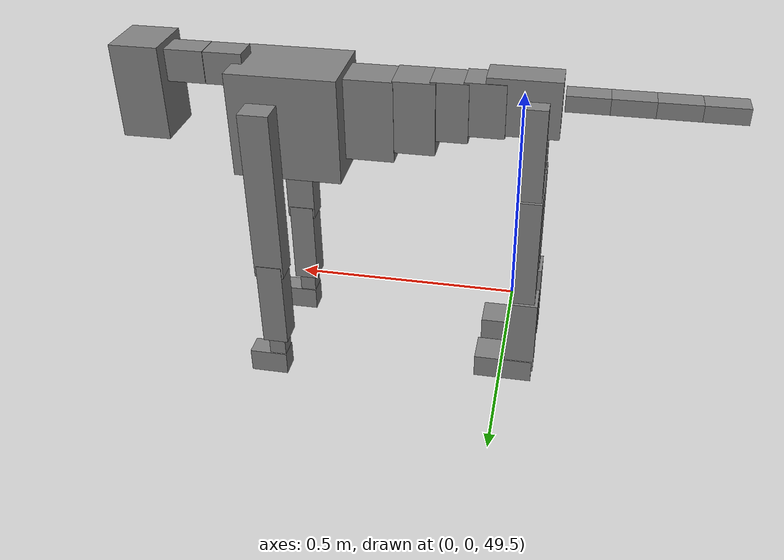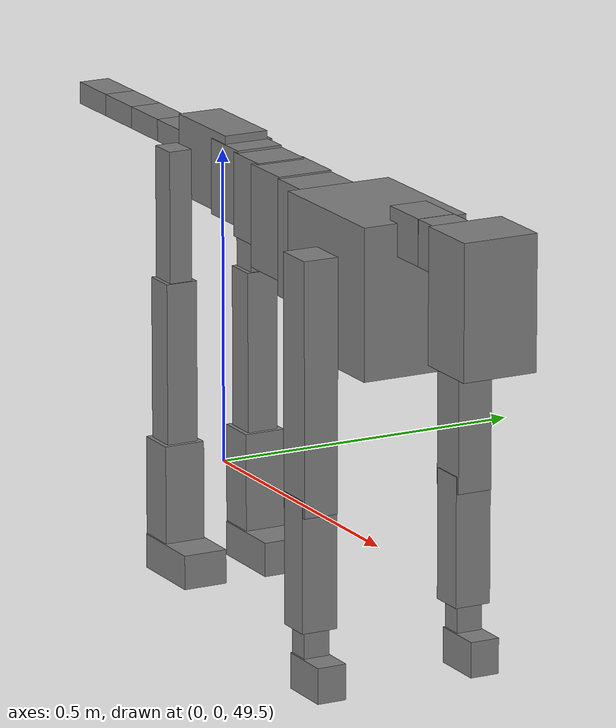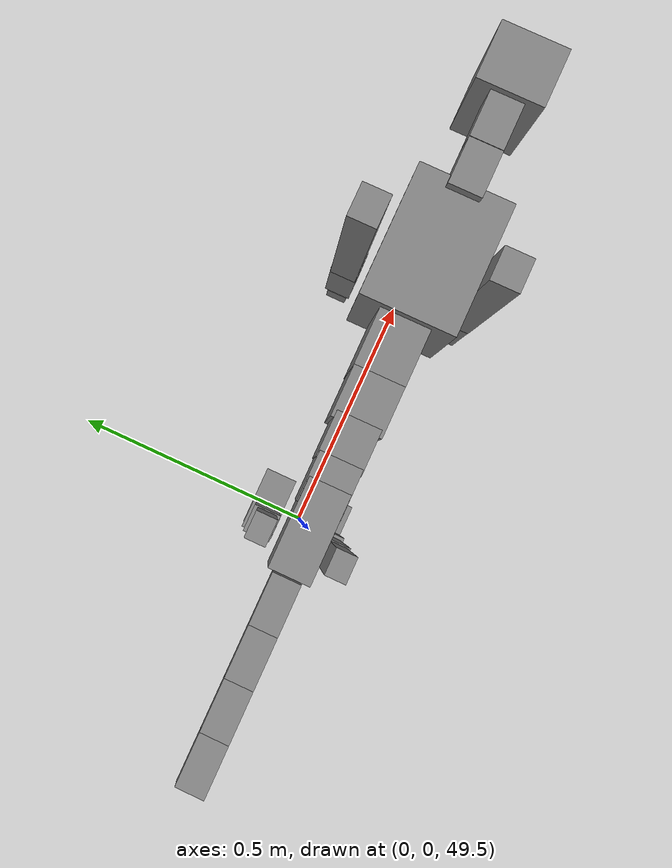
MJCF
<mujoco model="dog">

    <default>
        <joint armature="0.02" stiffness="1" damping="0.2" limited="true"/>
        <geom condim="3" friction="1 0.05 0.05" margin="0.01"/>
        <motor ctrllimited="true" ctrlrange="-1.0 1.0" forcelimited="true" gear="50"/>
    </default>

    <compiler inertiafromgeom="true" angle="radian"/>

    <option timestep="0.016" iterations="50" tolerance="1e-10" solver="Newton" jacobian="dense" cone="pyramidal"/>

    <size nconmax="20000" njmax="60000" nstack="5000000"/>
    <visual>
        <map force="0.1" zfar="30"/>
        <rgba haze="0.15 0.25 0.35 1"/>
        <quality shadowsize="2048"/>
        <global offwidth="800" offheight="800"/>
    </visual>

    <asset>
        <texture type="skybox" builtin="gradient" rgb1="0.3 0.5 0.7" rgb2="0 0 0" width="512" height="512"/>
        <texture name="texplane" type="2d" builtin="checker" rgb1=".2 .3 .4" rgb2=".1 0.15 0.2" width="512" height="512"
                 mark="cross" markrgb=".8 .8 .8"/>
        <texture name="texgeom" type="cube" builtin="flat" mark="cross" width="127" height="1278" rgb1="0.8 0.6 0.4"
                 rgb2="0.8 0.6 0.4" markrgb="1 1 1" random="0.01"/>

        <material name="matplane" reflectance="0.3" texture="texplane" texrepeat="1 1" texuniform="true"/>
        <material name="matgeom" texture="texgeom" texuniform="true" rgba="0.8 0.6 .4 1"/>
    </asset>

    <worldbody>
        <geom name="floor" pos="0 0 0" size="0 0 .25" type="plane" material="matplane" condim="3"/>

        <light directional="false" diffuse=".2 .2 .2" specular="0 0 0" pos="0 0 5" dir="0 0 -1" castshadow="false"/>
        <light mode="targetbodycom" target="torso" directional="false" diffuse=".8 .8 .8" specular="0.3 0.3 0.3"
               pos="0 0 4.0" dir="0 0 -1"/>

        <body name="root" pos="0 0 50">
            <freejoint name="root_1"/>
            <geom type="box" pos="0 0 -0.02" size="0.0774  0.0358  0.063" density="2030"/>

            <body name="spine1" pos="0.054 0 0">
                <joint name="spine1_y" axis="0 1 0" range="0 0.7" limited="true"/>
                <geom type="box" pos="0.02375 0 -0.03" size="0.04375  0.0375  0.05985" density="2030"/>

                <body name="spine2" pos="0.0612 0 0">
                    <joint name="spine2_y" axis="0 1 0" range="-0.15 0.15" limited="true"/>
                    <geom type="box" pos="0.03555  0  -0.04" size="0.04055  0.039  0.06615" density="2030"/>

                    <body name="spine3" pos="0.0730 0 0">
                        <joint name="spine3_y" axis="0 1 0" range="-0.15 0.15" limited="true"/>
                        <geom type="box" pos="0.03555  0  -0.057" size="0.04555  0.0445  0.081" density="2030"/>

                        <body name="spine4" pos="0.0780 0 0">
                            <joint name="spine4_y" axis="0 1 0" range="-0.15 0.15" limited="true"/>
                            <geom type="box" pos="0.05265  0  -0.07" size="0.05265  0.045  0.09135" density="2030"/>

                            <body name="torso" pos="0.1082 0 0">
                                <joint name="torso_y" axis="0 1 0" range="-0.15 0.15" limited="true"/>
                                <geom type="box" pos="0.11925  0  -0.085" size="0.11925  0.085  0.11745"
                                      density="2030"/>

                                <body name="neck1" pos="0.2160  0   0.0180">
                                    <joint name="neck1_y" axis="0 1 0" range="-1.2  -1" limited="true"/>
                                    <geom type="box" pos="0.0423  0  0" size="0.0423  0.03  0.036" density="2325"/>

                                    <body name="neck2" pos="0.0853  0  0">
                                        <joint name="neck2_y" axis="0 1 0" range="0.1  0" limited="true"/>
                                        <geom type="box" pos="0.0423  0  0" size="0.0423  0.03  0.036" density="2325"/>

                                        <body name="head" pos="0.0853  0  0">
                                            <joint name="head_y" axis="0 1 0" range="-0.3  -0.2" limited="true"/>
                                            <geom type="box" pos="0.0531  0  -0.055" size="0.0531  0.06  0.1044"
                                                  density="4030"/>

                                        </body>
                                    </body>
                                </body>

                                <body name="front_shoulder" pos="0.156  0   -0.0480">
                                    <joint name="front_shoulder_y" axis="0 1 0" range="-1 1.5" limited="true"/>
                                    <geom type="box" pos="0 0.13 -0.1705" size="0.0327  0.0279  0.1972" density="1158"/>
                                    <geom type="box" pos="0 -0.13 -0.1705" size="0.0327  0.0279  0.1972"
                                          density="1158"/>

                                    <body name="front_elbow" pos="0  0  -0.3411">
                                        <joint name="front_elbow_y" axis="0 1 0" range="-2 0" limited="true"/>
                                        <geom type="box" pos="0 0.13 -0.1032" size="0.0286  0.0292  0.1032"
                                              density="1081"/>
                                        <geom type="box" pos="0 -0.13 -0.1032" size="0.0286  0.0292  0.1032"
                                              density="1081"/>

                                        <body name="front_wrist" pos="0  0  -0.2063">
                                            <joint name="front_wrist_y" axis="0 1 0" range="-0.2 0" limited="true"/>
                                            <geom type="box" pos="0 0.13 -0.0291" size="0.0187  0.0208  0.0423"
                                                  density="1664"/>
                                            <geom type="box" pos="0 -0.13 -0.0291" size="0.0187  0.0208  0.0423"
                                                  density="1664"/>

                                            <body name="front_finger_end" pos="0  0  -0.0582">
                                                <joint name="front_finger_y" axis="0 1 0" range="-0.4 1"
                                                       limited="true"/>
                                                <geom type="box" pos="0.0236  0.13  -0.0131"
                                                      size="0.0433  0.0236  0.0281" density="1515"/>
                                                <geom type="box" pos="0.0236  -0.13  -0.0131"
                                                      size="0.0433  0.0236  0.0281" density="1515"/>

                                            </body>

                                        </body>
                                    </body>
                                </body>

                            </body>
                        </body>
                    </body>
                </body>
            </body>

            <body name="back_hip" pos="-0.03 0 -0.018">
                <joint name="back_hip_y" axis="0 1 0" range="-1.5 0.3" limited="true"/>
                <geom type="box" pos="0 0.07 -0.1010" size="0.0238  0.0187  0.1238" density="1154"/>
                <geom type="box" pos="0 -0.07 -0.1010" size="0.0238  0.0187  0.1238" density="1154"/>

                <body name="back_knee" pos="0  0  -0.2019">
                    <joint name="back_knee_y" axis="0 1 0" range="0 2.8" limited="true"/>
                    <geom type="box" pos="0 0.07 -0.1266" size="0.0261  0.0257  0.1421" density="1227"/>
                    <geom type="box" pos="0 -0.07 -0.1266" size="0.0261  0.0257  0.1421" density="1227"/>

                    <body name="back_ankle" pos="0  0  -0.2532">
                        <joint name="back_ankle_y" axis="0 1 0" range="-2.2 0" limited="true"/>
                        <geom type="box" pos="0 0.07 -0.0804" size="0.0331  0.0331  0.0917" density="1284"/>
                        <geom type="box" pos="0 -0.07 -0.0804" size="0.0331  0.0331  0.0917" density="1284"/>

                        <body name="back_toe_end" pos="0  0  -0.1609">
                            <joint name="back_toe_y" axis="0 1 0" range="-0.4 1" limited="true"/>
                            <geom type="box" pos="0.0359  0.07  -0.0123" size="0.0657  0.0359  0.0273" density="1515"/>
                            <geom type="box" pos="0.0359  -0.07  -0.0123" size="0.0657  0.0359  0.0273" density="1515"/>

                        </body>
                    </body>
                </body>
            </body>

            <body name="tail1" pos="-0.074 0 -0.006">
                <joint name="tail1_y" axis="0 1 0" range="-0.2 0.2" limited="true"/>
                <geom type="box" pos="-0.0536  0  0" size="0.045  0.025  0.0175" density="1587"/>

                <body name="tail2" pos="-0.09 0 0">
                    <joint name="tail2_y" axis="0 1 0" range="-0.2 0.2" limited="true"/>
                    <geom type="box" pos="-0.0536  0  0" size="0.045  0.025  0.0175" density="1587"/>

                    <body name="tail3" pos="-0.09 0 0">
                        <joint name="tail3_y" axis="0 1 0" range="-0.2 0.2" limited="true"/>
                        <geom type="box" pos="-0.0536  0  0" size="0.045  0.025  0.0175" density="1587"/>

                        <body name="tail4" pos="-0.09 0 0">
                            <joint name="tail4_y" axis="0 1 0" range="-0.2 0.2" limited="true"/>
                            <geom type="box" pos="-0.0536  0  0" size="0.045  0.025  0.0175" density="1587"/>

                        </body>
                    </body>
                </body>
            </body>
        </body>
    </worldbody>

    <actuator>
        <motor joint="spine1_y" forcerange="-150 150     "/>
        <motor joint="spine2_y" forcerange="-150 150     "/>
        <motor joint="spine3_y" forcerange="-150 150     "/>
        <motor joint="spine4_y" forcerange="-150 150     "/>
        <motor joint="torso_y" forcerange="-150 150     "/>
        <motor joint="neck1_y" forcerange="-100 100       "/>
        <motor joint="neck2_y" forcerange="-100 100       "/>
        <motor joint="head_y" forcerange="-150 150       "/>
        <motor joint="front_shoulder_y" forcerange="-180.48 105.83"/>
        <motor joint="front_elbow_y" forcerange="-138.59 174.05"/>
        <motor joint="front_wrist_y" forcerange="-77.27 89.17"/>
        <motor joint="front_finger_y" forcerange="-24.85 61.13"/>
        <motor joint="back_hip_y" forcerange="-230.69 218.31"/>
        <motor joint="back_knee_y" forcerange="-226.29 348.01"/>
        <motor joint="back_angle_y" forcerange="-185.77 244.24"/>
        <motor joint="back_toe_y" forcerange="-75.67 131.21"/>
        <motor joint="tail1_y" forcerange="-50 50     "/>
        <motor joint="tail2_y" forcerange="-50 50     "/>
        <motor joint="tail3_y" forcerange="-50 50     "/>
        <motor joint="tail4_y" forcerange="-50 50     "/>
    </actuator>
</mujoco>
